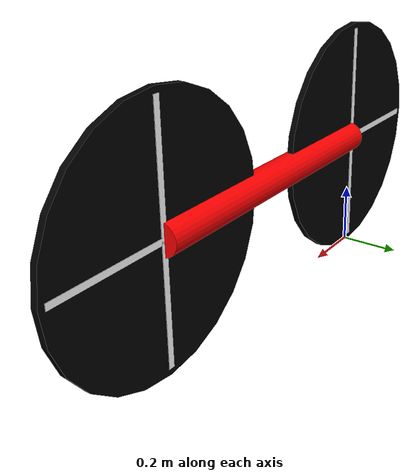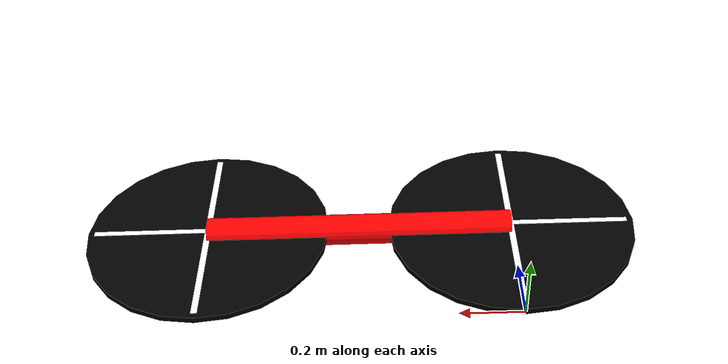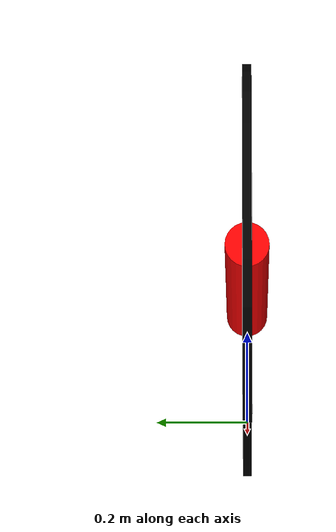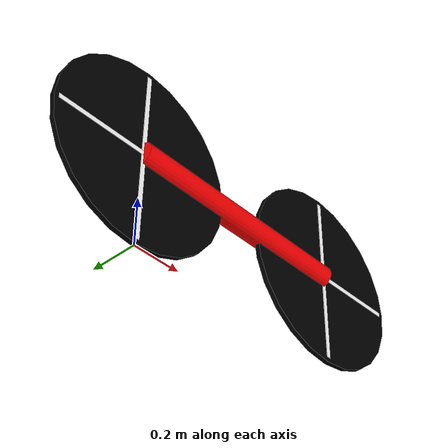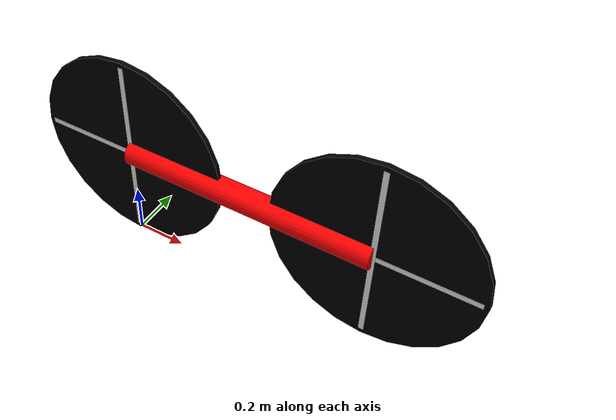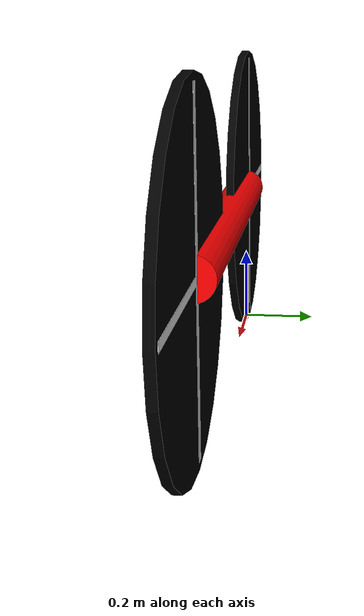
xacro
<?xml version="1.0"?>
<robot name="two_steering" xmlns:xacro="http://www.ros.org/wiki/xacro">

<xacro:property name="PI" value="3.1415926535897931"/>

<xacro:arg name="prefix" default="robot/"/>
<xacro:property name="radius" value=".4"/>
<xacro:property name="L" value="1."/>
<xacro:property name="thickness" value="0.02"/>

<material name="color">
    <color rgba="1 0 0 1"/>
</material>

  <material name="black">
    <color rgba="0 0 0 1"/>
  </material>
  <material name="white">
    <color rgba="1 1 1 1"/>
  </material>

  <link name="base_link">
    <visual>
      <origin rpy="0 ${PI/2} 0" xyz="${L/2} 0 0"/>
      <geometry>
        <cylinder length="${L}" radius="0.05"/>
      </geometry>
      <material name="color"/>
    </visual>
  </link>

  <link name="$(arg prefix)footprint"/>

  <joint name="footprint" type="fixed">
      <child link="base_link"/>
      <parent link="$(arg prefix)footprint"/>
    <origin xyz="0 0 ${radius}"/>
   </joint>

<xacro:macro name="wheel" params="name offset">

<link name="${name}_wheel">
    <visual>
      <geometry>
        <cylinder length="${thickness}" radius="${radius}"/>
      </geometry>
      <material name="black"/>
    </visual>

    <visual>
        <geometry>
            <box size="${thickness} ${1.9*radius} ${1.1*thickness}"/>
        </geometry>
      <material name="white"/>
    </visual>
    <visual>
        <geometry>
            <box size="${1.9*radius} ${thickness} ${1.1*thickness}"/>
        </geometry>
      <material name="white"/>
    </visual>
</link>

<link name="${name}_wheel_steering"/>

<joint name="${name}_wheel_steering" type="revolute">
    <parent link="base_link"/>
    <child link="${name}_wheel_steering"/>
    <origin xyz="${offset} 0 0"/>
    <axis xyz="0 0 1"/>
    <limit lower="${-PI/4}" upper="${PI/4}" effort="0" velocity="100"/>
</joint>

<joint name="${name}_wheel" type="continuous">
    <parent link="${name}_wheel_steering"/>
    <child link="${name}_wheel"/>
    <origin rpy="${-PI/2} 0 0"/>
    <axis xyz="0 0 1"/>
</joint>
</xacro:macro>

 <xacro:wheel name="front" offset="${L}"/>
 <xacro:wheel name="rear" offset="0"/>

</robot>
